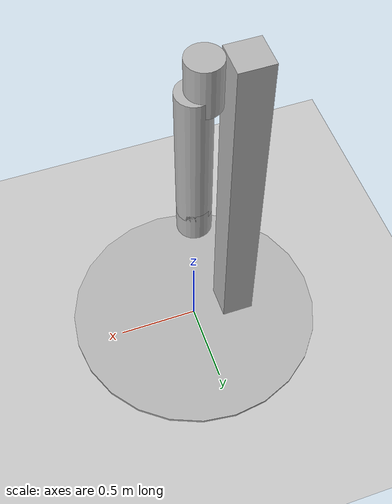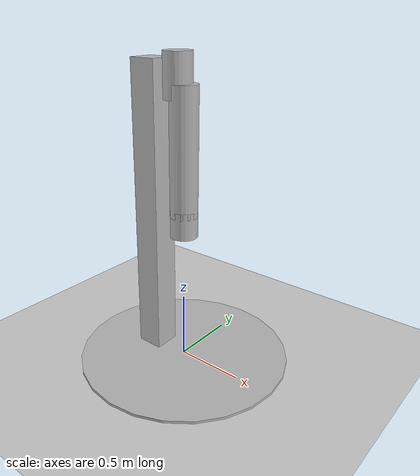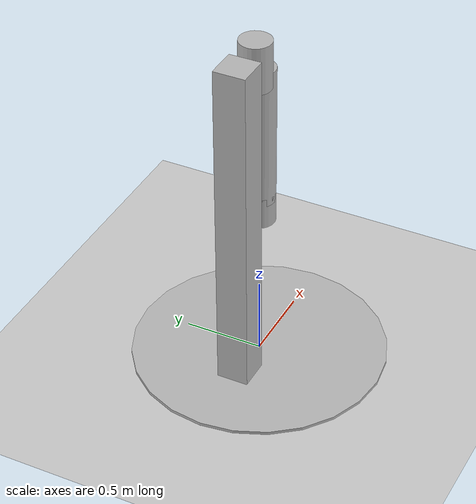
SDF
<?xml version="1.0"?>
<sdf version="1.6">
  <world name="default">
    <include>
      <uri>model://ground_plane</uri>
    </include>
    <include>
      <uri>model://sun</uri>
    </include>
    <model name="single_pendulum_with_base">
      <link name="base">
        <inertial>
          <mass>10</mass>
        </inertial>
        <visual name="vis_plate_on_ground">
          <pose>0 0 0.01 0 0 0</pose>
          <geometry>
            <cylinder>
              <radius>0.8</radius>
              <length>0.02</length>
            </cylinder>
          </geometry>
        </visual>
        <visual name="vis_pole">
          <pose>-0.275 0 1.1 0 0 0</pose>
          <geometry>
            <box>
              <size>0.2 0.2 2.2</size>
            </box>
          </geometry>
        </visual>
        <collision name="col_plate_on_ground">
          <pose>0 0 0.01 0 0 0</pose>
          <geometry>
            <cylinder>
              <radius>0.8</radius>
              <length>0.02</length>
            </cylinder>
          </geometry>
        </collision>
        <collision name="col_pole">
          <pose>-0.275 0 1.1 0 0 0</pose>
          <geometry>
            <box>
              <size>0.2 0.2 2.2</size>
            </box>
          </geometry>
        </collision>
      </link>
      <!-- upper link, length 1, IC -90 degrees -->
      <link name="upper_link">
        <pose>0 0 2.1 -3.14 0 0</pose>
        <self_collide>0</self_collide>
        <inertial>
          <pose>0 0 0.5 0 0 0</pose>
        </inertial>
        <visual name="vis_upper_joint">
          <pose>-0.05 0 0 0 0 0</pose>
          <geometry>
            <cylinder>
              <radius>0.1</radius>
              <length>0.3</length>
            </cylinder>
          </geometry>
        </visual>
        <visual name="vis_lower_joint">
          <pose>0 0 1.0 0 0 0</pose>
          <geometry>
            <cylinder>
              <radius>0.1</radius>
              <length>0.2</length>
            </cylinder>
          </geometry>
        </visual>
        <visual name="vis_cylinder">
          <pose>0 0 0.5 0 0 0</pose>
          <geometry>
            <cylinder>
              <radius>0.1</radius>
              <length>0.9</length>
            </cylinder>
          </geometry>
        </visual>
        <collision name="col_upper_joint">
          <pose>-0.05 0 0 0 0 0</pose>
          <geometry>
            <cylinder>
              <radius>0.1</radius>
              <length>0.3</length>
            </cylinder>
          </geometry>
        </collision>
        <collision name="col_lower_joint">
          <pose>0 0 1.0 0 0 0</pose>
          <geometry>
            <cylinder>
              <radius>0.1</radius>
              <length>0.2</length>
            </cylinder>
          </geometry>
        </collision>
        <collision name="col_cylinder">
          <pose>0 0 0.5 0 0 0</pose>
          <geometry>
            <cylinder>
              <radius>0.1</radius>
              <length>0.9</length>
            </cylinder>
          </geometry>
        </collision>
      </link>
      <!-- pin joint for upper link, at origin of upper link -->
      <joint name="upper_joint" type="revolute">
        <parent>base</parent>
        <child>upper_link</child>
        <axis>
          <xyz>1.0 0 0</xyz>
        </axis>
        <physics>
          <provide_feedback>true</provide_feedback>
        </physics>
      </joint>
    </model>
  </world>
</sdf>
